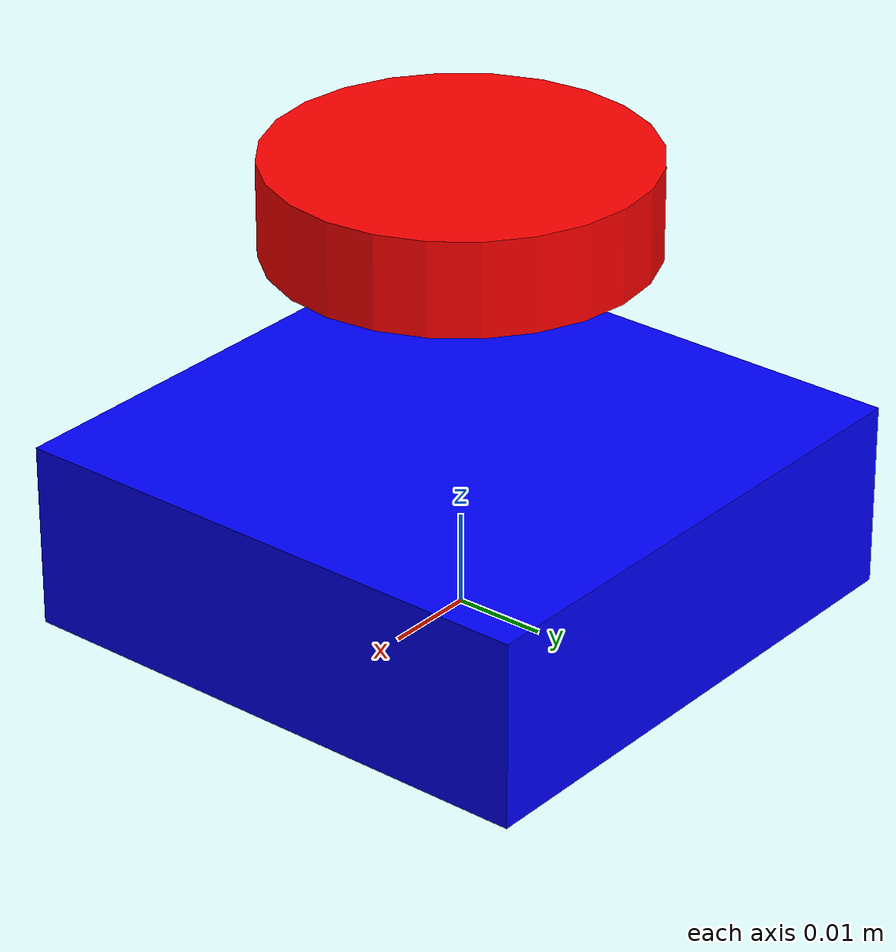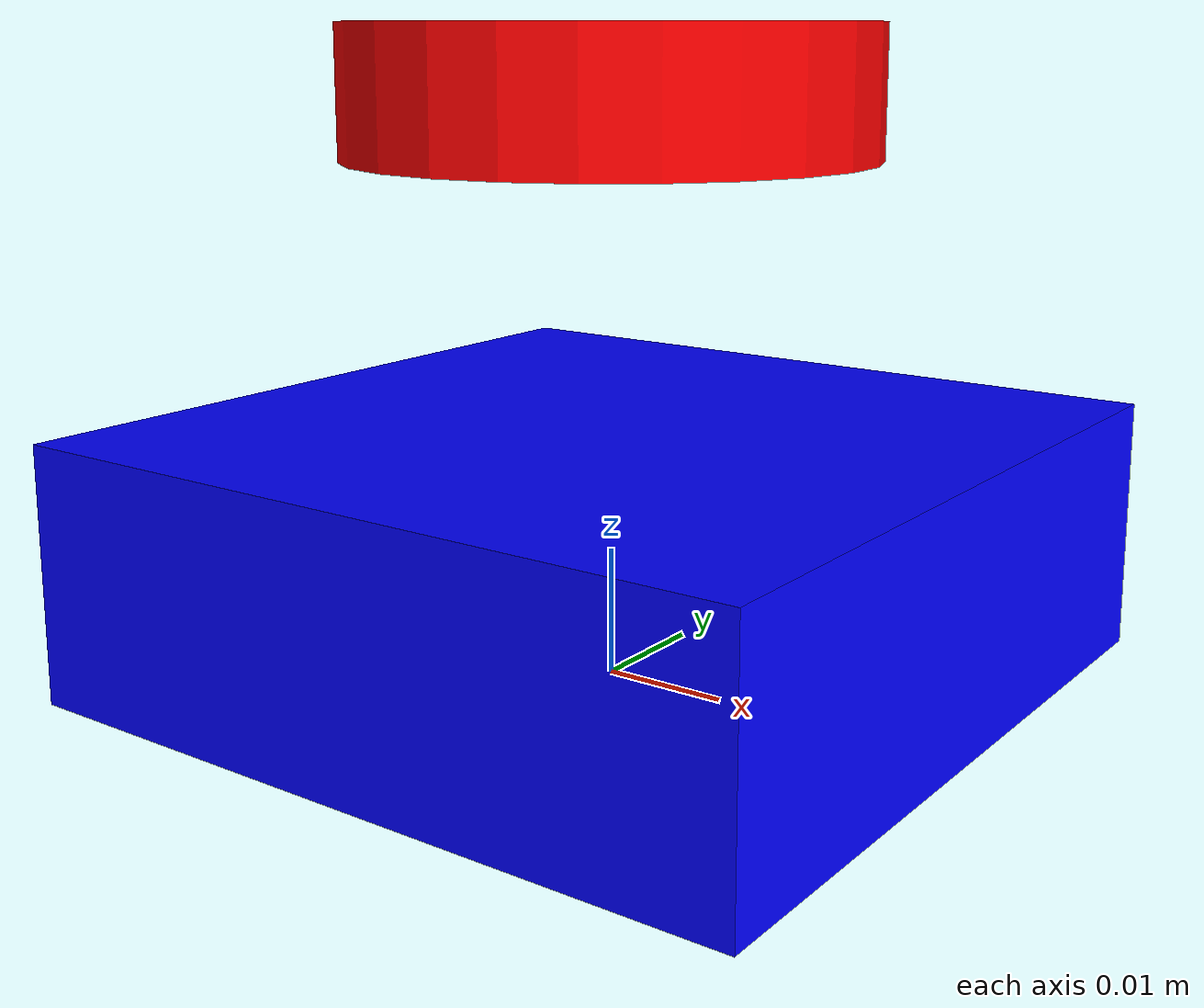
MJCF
<mujoco model="push_button">
  <option gravity="0 0 0" />

  <worldbody>
    <body>
      <body name="object" pos="0 0 0.01">
        <geom name="base_geom" type="box" size="0.03 0.03 0.01" rgba="0 0 1 1" mass="10000"
          group="0" />

        <body name="button" pos="0 0 0.035">
          <joint name="btn_slide" type="slide" axis="0 0 1" range="-0.02 0.0" damping="2"
            stiffness="20" />
          <geom name="btn" type="cylinder" size="0.02 0.005" rgba="1 0 0 1" group="0" />
        </body>
      </body>
      <site rgba="0 0 0 0" size="0.002" pos="0 0 0" name="bottom_site" />
      <site rgba="0 0 0 0" size="0.002" pos="0 0 0.05" name="top_site" />
      <site rgba="0 0 0 0" size="0.002" pos="0.0 0.05 0"
        name="horizontal_radius_site" />
    </body>
  </worldbody>
</mujoco>
